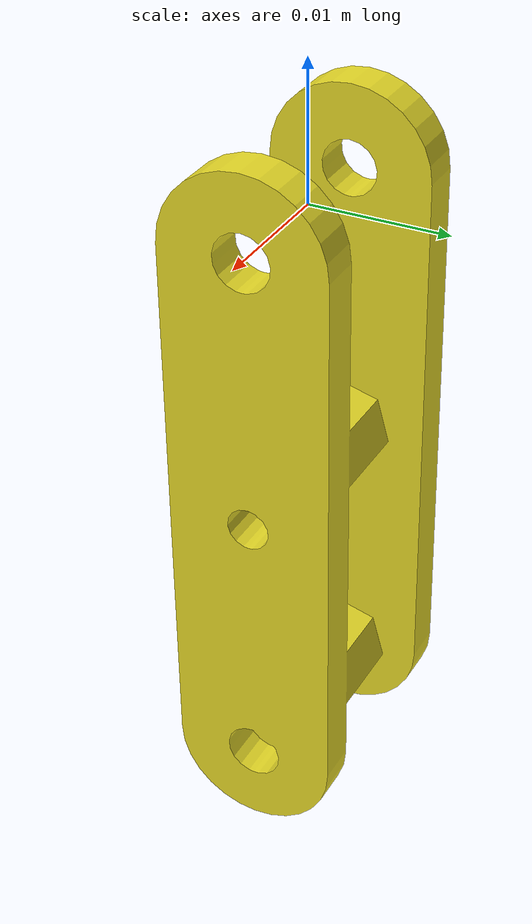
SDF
<?xml version="1.0" ?>

  <sdf version="1.5">
    <model name="arduwoodpecker_claw_pole">

      <link name="claw_pole">
      <pose>0 0 0.0  0 0 0</pose>
      <inertial>
        <pose>0 0 0 0 0 0</pose>
        <mass>0.1</mass>
        <inertia>
          <ixx>0.01</ixx>
          <iyy>0.01</iyy>
          <izz>0.01</izz>
          <ixy>0</ixy>
          <ixz>0</ixz>
          <iyz>0</iyz>
        </inertia>
      </inertial>
      <collision name="claw_pole_collision">
        <pose>0 0 0  0 0 0</pose>
        <geometry>
          <mesh>
            <uri>model://arduwoodpecker_claw_pole/meshes/arduwoodpecker_claw_pole.STL</uri>
          </mesh>
        </geometry>
        <surface>
          <contact>
            <ode>
              <max_vel>100.0</max_vel>
              <min_depth>0.001</min_depth>
            </ode>
          </contact>
          <friction>
            <ode>
              <mu>100000.0</mu>
              <mu2>100000.0</mu2>
            </ode>
          </friction>
        </surface>
      </collision>
      <visual name="claw_pole_visual">
        <geometry>
          <mesh>
            <uri>model://arduwoodpecker_claw_pole/meshes/arduwoodpecker_claw_pole.STL</uri>
          </mesh>
        </geometry>
        <material>
          <script>
            <name>Gazebo/Yellow</name>
          </script>
        </material>
      </visual>
    </link>

</model>
</sdf>
